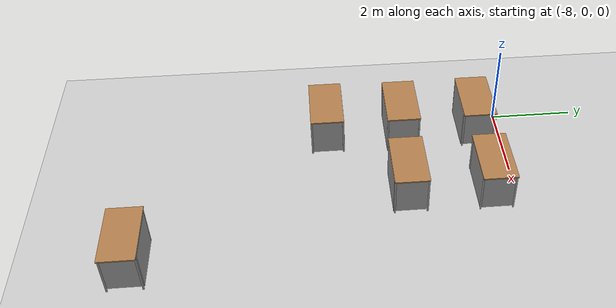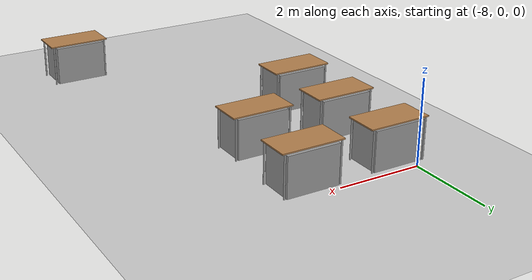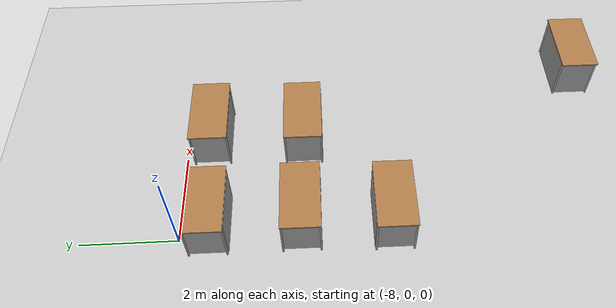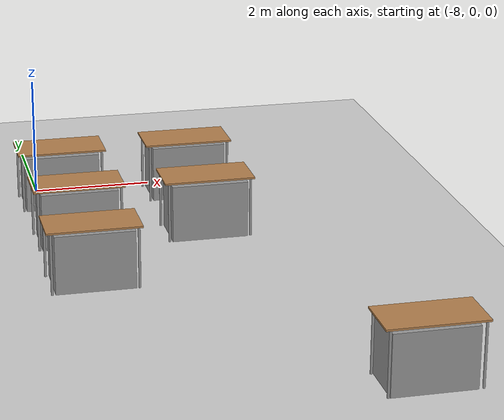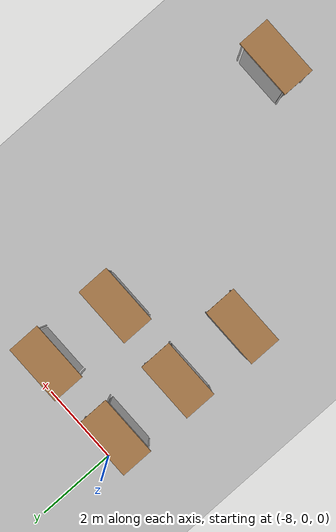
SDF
<sdf version="1.6">
 <world name="default">
  <model name="ground_plane">
   <static>1</static>
   <link name="link">
    <collision name="collision">
     <geometry><plane><normal>0 0 1</normal><size>100 100</size></plane></geometry>
     <surface>
      <contact><collide_bitmask>65535</collide_bitmask></contact>
      <friction><ode><mu>100</mu><mu2>50</mu2></ode></friction>
     </surface>
    </collision>
    <visual name="visual">
     <cast_shadows>0</cast_shadows>
     <geometry><plane><normal>0 0 1</normal><size>100 100</size></plane></geometry>
     <material>
      <script><uri>file://media/materials/scripts/gazebo.material</uri><name>Gazebo/Grey</name></script>
     </material>
    </visual>
   </link>
  </model>
  <model name="table_clone_5">
   <static>1</static>
   <link name="link">
    <collision name="surface">
     <pose>0 0 1 0 -0 0</pose>
     <geometry><box><size>1.5 0.8 0.03</size></box></geometry>
     <surface><friction><ode><mu>0.6</mu><mu2>0.6</mu2></ode></friction></surface>
    </collision>
    <visual name="visual1">
     <pose>0 0 1 0 -0 0</pose>
     <geometry><box><size>1.5 0.8 0.03</size></box></geometry>
     <material>
      <script><uri>file://media/materials/scripts/gazebo.material</uri><name>Gazebo/Wood</name></script>
     </material>
    </visual>
    <collision name="front_left_leg">
     <pose>0.68 0.38 0.5 0 -0 0</pose>
     <geometry><cylinder><radius>0.02</radius><length>1</length></cylinder></geometry>
    </collision>
    <visual name="front_left_leg">
     <pose>0.68 0.38 0.5 0 -0 0</pose>
     <geometry><cylinder><radius>0.02</radius><length>1</length></cylinder></geometry>
     <material>
      <script><uri>file://media/materials/scripts/gazebo.material</uri><name>Gazebo/Grey</name></script>
     </material>
    </visual>
    <collision name="front_right_leg">
     <pose>0.68 -0.38 0.5 0 -0 0</pose>
     <geometry><cylinder><radius>0.02</radius><length>1</length></cylinder></geometry>
    </collision>
    <visual name="front_right_leg">
     <pose>0.68 -0.38 0.5 0 -0 0</pose>
     <geometry><cylinder><radius>0.02</radius><length>1</length></cylinder></geometry>
     <material>
      <script><uri>file://media/materials/scripts/gazebo.material</uri><name>Gazebo/Grey</name></script>
     </material>
    </visual>
    <collision name="back_right_leg">
     <pose>-0.68 -0.38 0.5 0 -0 0</pose>
     <geometry><cylinder><radius>0.02</radius><length>1</length></cylinder></geometry>
    </collision>
    <visual name="back_right_leg">
     <pose>-0.68 -0.38 0.5 0 -0 0</pose>
     <geometry><cylinder><radius>0.02</radius><length>1</length></cylinder></geometry>
     <material>
      <script><uri>file://media/materials/scripts/gazebo.material</uri><name>Gazebo/Grey</name></script>
     </material>
    </visual>
    <collision name="back_left_leg">
     <pose>-0.68 0.38 0.5 0 -0 0</pose>
     <geometry><cylinder><radius>0.02</radius><length>1</length></cylinder></geometry>
    </collision>
    <visual name="back_left_leg">
     <pose>-0.68 0.38 0.5 0 -0 0</pose>
     <geometry><cylinder><radius>0.02</radius><length>1</length></cylinder></geometry>
     <material>
      <script><uri>file://media/materials/scripts/gazebo.material</uri><name>Gazebo/Grey</name></script>
     </material>
    </visual>
   </link>
   <pose>-7.64676 -0.599518 0 0 -0 0</pose>
  </model>
  <model name="table_clone_6">
   <static>1</static>
   <link name="link">
    <collision name="surface">
     <pose>0 0 1 0 -0 0</pose>
     <geometry><box><size>1.5 0.8 0.03</size></box></geometry>
     <surface><friction><ode><mu>0.6</mu><mu2>0.6</mu2></ode></friction></surface>
    </collision>
    <visual name="visual1">
     <pose>0 0 1 0 -0 0</pose>
     <geometry><box><size>1.5 0.8 0.03</size></box></geometry>
     <material>
      <script><uri>file://media/materials/scripts/gazebo.material</uri><name>Gazebo/Wood</name></script>
     </material>
    </visual>
    <collision name="front_left_leg">
     <pose>0.68 0.38 0.5 0 -0 0</pose>
     <geometry><cylinder><radius>0.02</radius><length>1</length></cylinder></geometry>
    </collision>
    <visual name="front_left_leg">
     <pose>0.68 0.38 0.5 0 -0 0</pose>
     <geometry><cylinder><radius>0.02</radius><length>1</length></cylinder></geometry>
     <material>
      <script><uri>file://media/materials/scripts/gazebo.material</uri><name>Gazebo/Grey</name></script>
     </material>
    </visual>
    <collision name="front_right_leg">
     <pose>0.68 -0.38 0.5 0 -0 0</pose>
     <geometry><cylinder><radius>0.02</radius><length>1</length></cylinder></geometry>
    </collision>
    <visual name="front_right_leg">
     <pose>0.68 -0.38 0.5 0 -0 0</pose>
     <geometry><cylinder><radius>0.02</radius><length>1</length></cylinder></geometry>
     <material>
      <script><uri>file://media/materials/scripts/gazebo.material</uri><name>Gazebo/Grey</name></script>
     </material>
    </visual>
    <collision name="back_right_leg">
     <pose>-0.68 -0.38 0.5 0 -0 0</pose>
     <geometry><cylinder><radius>0.02</radius><length>1</length></cylinder></geometry>
    </collision>
    <visual name="back_right_leg">
     <pose>-0.68 -0.38 0.5 0 -0 0</pose>
     <geometry><cylinder><radius>0.02</radius><length>1</length></cylinder></geometry>
     <material>
      <script><uri>file://media/materials/scripts/gazebo.material</uri><name>Gazebo/Grey</name></script>
     </material>
    </visual>
    <collision name="back_left_leg">
     <pose>-0.68 0.38 0.5 0 -0 0</pose>
     <geometry><cylinder><radius>0.02</radius><length>1</length></cylinder></geometry>
    </collision>
    <visual name="back_left_leg">
     <pose>-0.68 0.38 0.5 0 -0 0</pose>
     <geometry><cylinder><radius>0.02</radius><length>1</length></cylinder></geometry>
     <material>
      <script><uri>file://media/materials/scripts/gazebo.material</uri><name>Gazebo/Grey</name></script>
     </material>
    </visual>
   </link>
   <pose>-5.43569 -0.553476 0 0 -0 0</pose>
  </model>
  <model name="table_clone_7">
   <static>1</static>
   <link name="link">
    <collision name="surface">
     <pose>0 0 1 0 -0 0</pose>
     <geometry><box><size>1.5 0.8 0.03</size></box></geometry>
     <surface><friction><ode><mu>0.6</mu><mu2>0.6</mu2></ode></friction></surface>
    </collision>
    <visual name="visual1">
     <pose>0 0 1 0 -0 0</pose>
     <geometry><box><size>1.5 0.8 0.03</size></box></geometry>
     <material>
      <script><uri>file://media/materials/scripts/gazebo.material</uri><name>Gazebo/Wood</name></script>
     </material>
    </visual>
    <collision name="front_left_leg">
     <pose>0.68 0.38 0.5 0 -0 0</pose>
     <geometry><cylinder><radius>0.02</radius><length>1</length></cylinder></geometry>
    </collision>
    <visual name="front_left_leg">
     <pose>0.68 0.38 0.5 0 -0 0</pose>
     <geometry><cylinder><radius>0.02</radius><length>1</length></cylinder></geometry>
     <material>
      <script><uri>file://media/materials/scripts/gazebo.material</uri><name>Gazebo/Grey</name></script>
     </material>
    </visual>
    <collision name="front_right_leg">
     <pose>0.68 -0.38 0.5 0 -0 0</pose>
     <geometry><cylinder><radius>0.02</radius><length>1</length></cylinder></geometry>
    </collision>
    <visual name="front_right_leg">
     <pose>0.68 -0.38 0.5 0 -0 0</pose>
     <geometry><cylinder><radius>0.02</radius><length>1</length></cylinder></geometry>
     <material>
      <script><uri>file://media/materials/scripts/gazebo.material</uri><name>Gazebo/Grey</name></script>
     </material>
    </visual>
    <collision name="back_right_leg">
     <pose>-0.68 -0.38 0.5 0 -0 0</pose>
     <geometry><cylinder><radius>0.02</radius><length>1</length></cylinder></geometry>
    </collision>
    <visual name="back_right_leg">
     <pose>-0.68 -0.38 0.5 0 -0 0</pose>
     <geometry><cylinder><radius>0.02</radius><length>1</length></cylinder></geometry>
     <material>
      <script><uri>file://media/materials/scripts/gazebo.material</uri><name>Gazebo/Grey</name></script>
     </material>
    </visual>
    <collision name="back_left_leg">
     <pose>-0.68 0.38 0.5 0 -0 0</pose>
     <geometry><cylinder><radius>0.02</radius><length>1</length></cylinder></geometry>
    </collision>
    <visual name="back_left_leg">
     <pose>-0.68 0.38 0.5 0 -0 0</pose>
     <geometry><cylinder><radius>0.02</radius><length>1</length></cylinder></geometry>
     <material>
      <script><uri>file://media/materials/scripts/gazebo.material</uri><name>Gazebo/Grey</name></script>
     </material>
    </visual>
   </link>
   <pose>-5.49232 -2.52556 0 0 -0 0</pose>
  </model>
  <model name="table_clone_8">
   <static>1</static>
   <link name="link">
    <collision name="surface">
     <pose>0 0 1 0 -0 0</pose>
     <geometry><box><size>1.5 0.8 0.03</size></box></geometry>
     <surface><friction><ode><mu>0.6</mu><mu2>0.6</mu2></ode></friction></surface>
    </collision>
    <visual name="visual1">
     <pose>0 0 1 0 -0 0</pose>
     <geometry><box><size>1.5 0.8 0.03</size></box></geometry>
     <material>
      <script><uri>file://media/materials/scripts/gazebo.material</uri><name>Gazebo/Wood</name></script>
     </material>
    </visual>
    <collision name="front_left_leg">
     <pose>0.68 0.38 0.5 0 -0 0</pose>
     <geometry><cylinder><radius>0.02</radius><length>1</length></cylinder></geometry>
    </collision>
    <visual name="front_left_leg">
     <pose>0.68 0.38 0.5 0 -0 0</pose>
     <geometry><cylinder><radius>0.02</radius><length>1</length></cylinder></geometry>
     <material>
      <script><uri>file://media/materials/scripts/gazebo.material</uri><name>Gazebo/Grey</name></script>
     </material>
    </visual>
    <collision name="front_right_leg">
     <pose>0.68 -0.38 0.5 0 -0 0</pose>
     <geometry><cylinder><radius>0.02</radius><length>1</length></cylinder></geometry>
    </collision>
    <visual name="front_right_leg">
     <pose>0.68 -0.38 0.5 0 -0 0</pose>
     <geometry><cylinder><radius>0.02</radius><length>1</length></cylinder></geometry>
     <material>
      <script><uri>file://media/materials/scripts/gazebo.material</uri><name>Gazebo/Grey</name></script>
     </material>
    </visual>
    <collision name="back_right_leg">
     <pose>-0.68 -0.38 0.5 0 -0 0</pose>
     <geometry><cylinder><radius>0.02</radius><length>1</length></cylinder></geometry>
    </collision>
    <visual name="back_right_leg">
     <pose>-0.68 -0.38 0.5 0 -0 0</pose>
     <geometry><cylinder><radius>0.02</radius><length>1</length></cylinder></geometry>
     <material>
      <script><uri>file://media/materials/scripts/gazebo.material</uri><name>Gazebo/Grey</name></script>
     </material>
    </visual>
    <collision name="back_left_leg">
     <pose>-0.68 0.38 0.5 0 -0 0</pose>
     <geometry><cylinder><radius>0.02</radius><length>1</length></cylinder></geometry>
    </collision>
    <visual name="back_left_leg">
     <pose>-0.68 0.38 0.5 0 -0 0</pose>
     <geometry><cylinder><radius>0.02</radius><length>1</length></cylinder></geometry>
     <material>
      <script><uri>file://media/materials/scripts/gazebo.material</uri><name>Gazebo/Grey</name></script>
     </material>
    </visual>
   </link>
   <pose>-7.63083 -2.4627 0 0 -0 0</pose>
  </model>
  <model name="table_clone_9">
   <static>1</static>
   <link name="link">
    <collision name="surface">
     <pose>0 0 1 0 -0 0</pose>
     <geometry><box><size>1.5 0.8 0.03</size></box></geometry>
     <surface><friction><ode><mu>0.6</mu><mu2>0.6</mu2></ode></friction></surface>
    </collision>
    <visual name="visual1">
     <pose>0 0 1 0 -0 0</pose>
     <geometry><box><size>1.5 0.8 0.03</size></box></geometry>
     <material>
      <script><uri>file://media/materials/scripts/gazebo.material</uri><name>Gazebo/Wood</name></script>
     </material>
    </visual>
    <collision name="front_left_leg">
     <pose>0.68 0.38 0.5 0 -0 0</pose>
     <geometry><cylinder><radius>0.02</radius><length>1</length></cylinder></geometry>
    </collision>
    <visual name="front_left_leg">
     <pose>0.68 0.38 0.5 0 -0 0</pose>
     <geometry><cylinder><radius>0.02</radius><length>1</length></cylinder></geometry>
     <material>
      <script><uri>file://media/materials/scripts/gazebo.material</uri><name>Gazebo/Grey</name></script>
     </material>
    </visual>
    <collision name="front_right_leg">
     <pose>0.68 -0.38 0.5 0 -0 0</pose>
     <geometry><cylinder><radius>0.02</radius><length>1</length></cylinder></geometry>
    </collision>
    <visual name="front_right_leg">
     <pose>0.68 -0.38 0.5 0 -0 0</pose>
     <geometry><cylinder><radius>0.02</radius><length>1</length></cylinder></geometry>
     <material>
      <script><uri>file://media/materials/scripts/gazebo.material</uri><name>Gazebo/Grey</name></script>
     </material>
    </visual>
    <collision name="back_right_leg">
     <pose>-0.68 -0.38 0.5 0 -0 0</pose>
     <geometry><cylinder><radius>0.02</radius><length>1</length></cylinder></geometry>
    </collision>
    <visual name="back_right_leg">
     <pose>-0.68 -0.38 0.5 0 -0 0</pose>
     <geometry><cylinder><radius>0.02</radius><length>1</length></cylinder></geometry>
     <material>
      <script><uri>file://media/materials/scripts/gazebo.material</uri><name>Gazebo/Grey</name></script>
     </material>
    </visual>
    <collision name="back_left_leg">
     <pose>-0.68 0.38 0.5 0 -0 0</pose>
     <geometry><cylinder><radius>0.02</radius><length>1</length></cylinder></geometry>
    </collision>
    <visual name="back_left_leg">
     <pose>-0.68 0.38 0.5 0 -0 0</pose>
     <geometry><cylinder><radius>0.02</radius><length>1</length></cylinder></geometry>
     <material>
      <script><uri>file://media/materials/scripts/gazebo.material</uri><name>Gazebo/Grey</name></script>
     </material>
    </visual>
   </link>
   <pose>-7.68096 -4.30939 0 0 -0 0</pose>
  </model>
  <model name="table_clone_10">
   <static>1</static>
   <link name="link">
    <collision name="surface">
     <pose>0 0 1 0 -0 0</pose>
     <geometry><box><size>1.5 0.8 0.03</size></box></geometry>
     <surface><friction><ode><mu>0.6</mu><mu2>0.6</mu2></ode></friction></surface>
    </collision>
    <visual name="visual1">
     <pose>0 0 1 0 -0 0</pose>
     <geometry><box><size>1.5 0.8 0.03</size></box></geometry>
     <material>
      <script><uri>file://media/materials/scripts/gazebo.material</uri><name>Gazebo/Wood</name></script>
     </material>
    </visual>
    <collision name="front_left_leg">
     <pose>0.68 0.38 0.5 0 -0 0</pose>
     <geometry><cylinder><radius>0.02</radius><length>1</length></cylinder></geometry>
    </collision>
    <visual name="front_left_leg">
     <pose>0.68 0.38 0.5 0 -0 0</pose>
     <geometry><cylinder><radius>0.02</radius><length>1</length></cylinder></geometry>
     <material>
      <script><uri>file://media/materials/scripts/gazebo.material</uri><name>Gazebo/Grey</name></script>
     </material>
    </visual>
    <collision name="front_right_leg">
     <pose>0.68 -0.38 0.5 0 -0 0</pose>
     <geometry><cylinder><radius>0.02</radius><length>1</length></cylinder></geometry>
    </collision>
    <visual name="front_right_leg">
     <pose>0.68 -0.38 0.5 0 -0 0</pose>
     <geometry><cylinder><radius>0.02</radius><length>1</length></cylinder></geometry>
     <material>
      <script><uri>file://media/materials/scripts/gazebo.material</uri><name>Gazebo/Grey</name></script>
     </material>
    </visual>
    <collision name="back_right_leg">
     <pose>-0.68 -0.38 0.5 0 -0 0</pose>
     <geometry><cylinder><radius>0.02</radius><length>1</length></cylinder></geometry>
    </collision>
    <visual name="back_right_leg">
     <pose>-0.68 -0.38 0.5 0 -0 0</pose>
     <geometry><cylinder><radius>0.02</radius><length>1</length></cylinder></geometry>
     <material>
      <script><uri>file://media/materials/scripts/gazebo.material</uri><name>Gazebo/Grey</name></script>
     </material>
    </visual>
    <collision name="back_left_leg">
     <pose>-0.68 0.38 0.5 0 -0 0</pose>
     <geometry><cylinder><radius>0.02</radius><length>1</length></cylinder></geometry>
    </collision>
    <visual name="back_left_leg">
     <pose>-0.68 0.38 0.5 0 -0 0</pose>
     <geometry><cylinder><radius>0.02</radius><length>1</length></cylinder></geometry>
     <material>
      <script><uri>file://media/materials/scripts/gazebo.material</uri><name>Gazebo/Grey</name></script>
     </material>
    </visual>
   </link>
   <pose>-3.75888 -8.76615 0 0 -0 0</pose>
  </model>
  <model name="unit_box">
   <pose>-5.49245 -2.53336 0.47249 0 -0 2e-05</pose>
   <link name="link">
    <inertial>
     <mass>1</mass>
     <inertia>
      <ixx>0.166667</ixx>
      <ixy>0</ixy>
      <ixz>0</ixz>
      <iyy>0.166667</iyy>
      <iyz>0</iyz>
      <izz>0.166667</izz>
     </inertia>
    </inertial>
    <collision name="collision"><geometry><box><size>1.26023 0.79892 0.944981</size></box></geometry></collision>
    <visual name="visual">
     <geometry><box><size>1.26023 0.79892 0.944981</size></box></geometry>
     <material>
      <script><name>Gazebo/Grey</name><uri>file://media/materials/scripts/gazebo.material</uri></script>
     </material>
    </visual>
   </link>
  </model>
  <model name="unit_box_clone">
   <pose>-7.63195 -2.45713 0.472487 -1e-05 -0 1.7e-05</pose>
   <link name="link">
    <inertial>
     <mass>1</mass>
     <inertia>
      <ixx>0.166667</ixx>
      <ixy>0</ixy>
      <ixz>0</ixz>
      <iyy>0.166667</iyy>
      <iyz>0</iyz>
      <izz>0.166667</izz>
     </inertia>
    </inertial>
    <collision name="collision"><geometry><box><size>1.26024 0.79892 0.944981</size></box></geometry></collision>
    <visual name="visual">
     <geometry><box><size>1.26024 0.79892 0.944981</size></box></geometry>
     <material>
      <script><name>Gazebo/Grey</name><uri>file://media/materials/scripts/gazebo.material</uri></script>
     </material>
    </visual>
   </link>
  </model>
  <model name="unit_box_clone_0">
   <pose>-7.67825 -4.30289 0.47249 0 -0 2e-05</pose>
   <link name="link">
    <inertial>
     <mass>1</mass>
     <inertia>
      <ixx>0.166667</ixx>
      <ixy>0</ixy>
      <ixz>0</ixz>
      <iyy>0.166667</iyy>
      <iyz>0</iyz>
      <izz>0.166667</izz>
     </inertia>
    </inertial>
    <collision name="collision"><geometry><box><size>1.26024 0.79892 0.944981</size></box></geometry></collision>
    <visual name="visual">
     <geometry><box><size>1.26024 0.79892 0.944981</size></box></geometry>
     <material>
      <script><name>Gazebo/Grey</name><uri>file://media/materials/scripts/gazebo.material</uri></script>
     </material>
    </visual>
   </link>
  </model>
  <model name="unit_box_clone_1">
   <pose>-7.6528 -0.607281 0.47249 0 -0 2e-05</pose>
   <link name="link">
    <inertial>
     <mass>1</mass>
     <inertia>
      <ixx>0.166667</ixx>
      <ixy>0</ixy>
      <ixz>0</ixz>
      <iyy>0.166667</iyy>
      <iyz>0</iyz>
      <izz>0.166667</izz>
     </inertia>
    </inertial>
    <collision name="collision"><geometry><box><size>1.26024 0.79892 0.944981</size></box></geometry></collision>
    <visual name="visual">
     <geometry><box><size>1.26024 0.79892 0.944981</size></box></geometry>
     <material>
      <script><name>Gazebo/Grey</name><uri>file://media/materials/scripts/gazebo.material</uri></script>
     </material>
    </visual>
   </link>
  </model>
  <model name="unit_box_clone_2">
   <pose>-5.43251 -0.538601 0.47249 0 -0 2e-05</pose>
   <link name="link">
    <inertial>
     <mass>1</mass>
     <inertia>
      <ixx>0.166667</ixx>
      <ixy>0</ixy>
      <ixz>0</ixz>
      <iyy>0.166667</iyy>
      <iyz>0</iyz>
      <izz>0.166667</izz>
     </inertia>
    </inertial>
    <collision name="collision"><geometry><box><size>1.26024 0.79892 0.944981</size></box></geometry></collision>
    <visual name="visual">
     <geometry><box><size>1.26024 0.79892 0.944981</size></box></geometry>
     <material>
      <script><name>Gazebo/Grey</name><uri>file://media/materials/scripts/gazebo.material</uri></script>
     </material>
    </visual>
   </link>
  </model>
  <model name="unit_box_clone_6">
   <pose>-3.78423 -8.76896 0.47249 0 -0 2e-05</pose>
   <link name="link">
    <inertial>
     <mass>1</mass>
     <inertia>
      <ixx>0.166667</ixx>
      <ixy>0</ixy>
      <ixz>0</ixz>
      <iyy>0.166667</iyy>
      <iyz>0</iyz>
      <izz>0.166667</izz>
     </inertia>
    </inertial>
    <collision name="collision"><geometry><box><size>1.26024 0.79892 0.944981</size></box></geometry></collision>
    <visual name="visual">
     <geometry><box><size>1.26024 0.79892 0.944981</size></box></geometry>
     <material>
      <script><name>Gazebo/Grey</name><uri>file://media/materials/scripts/gazebo.material</uri></script>
     </material>
    </visual>
   </link>
  </model>
 </world>
</sdf>
